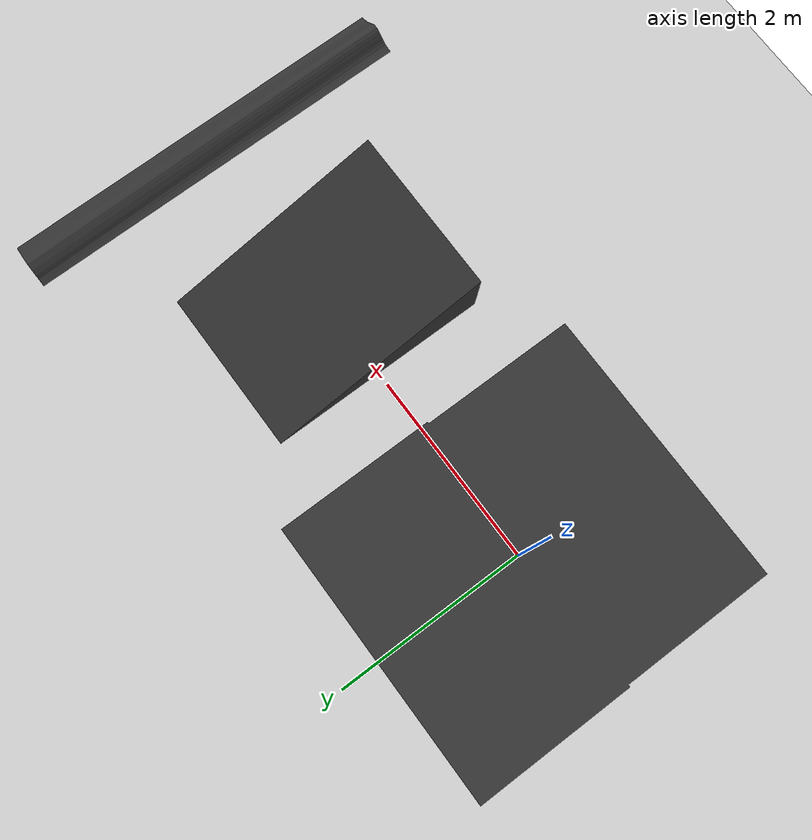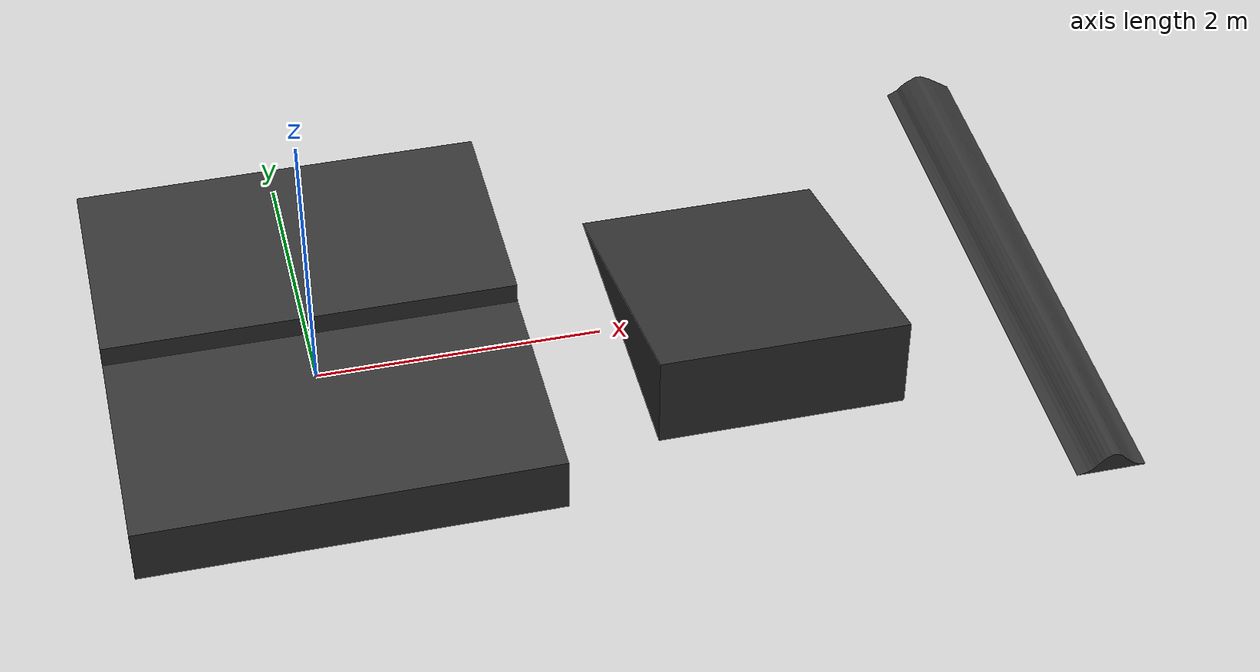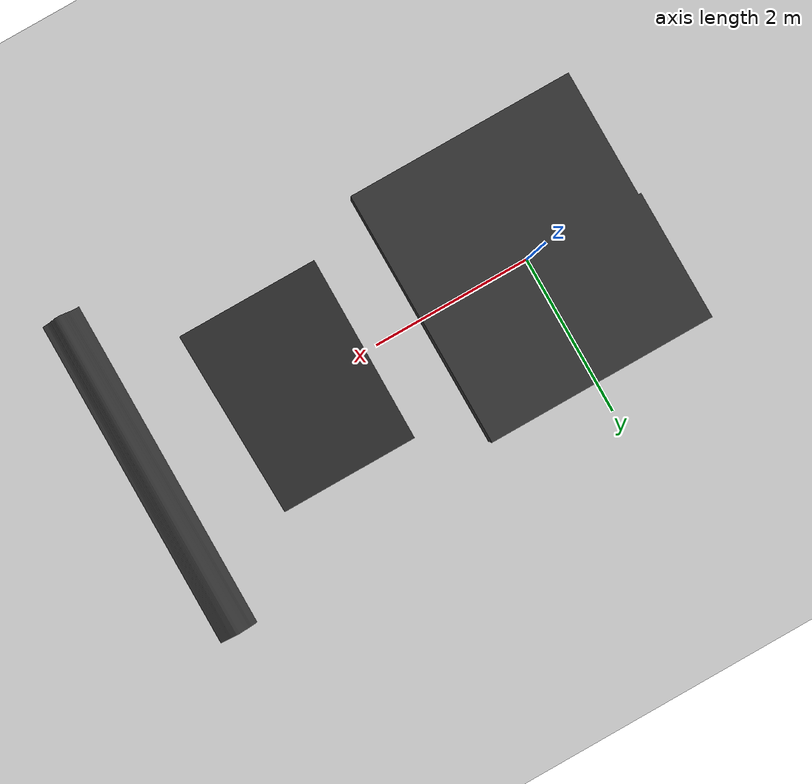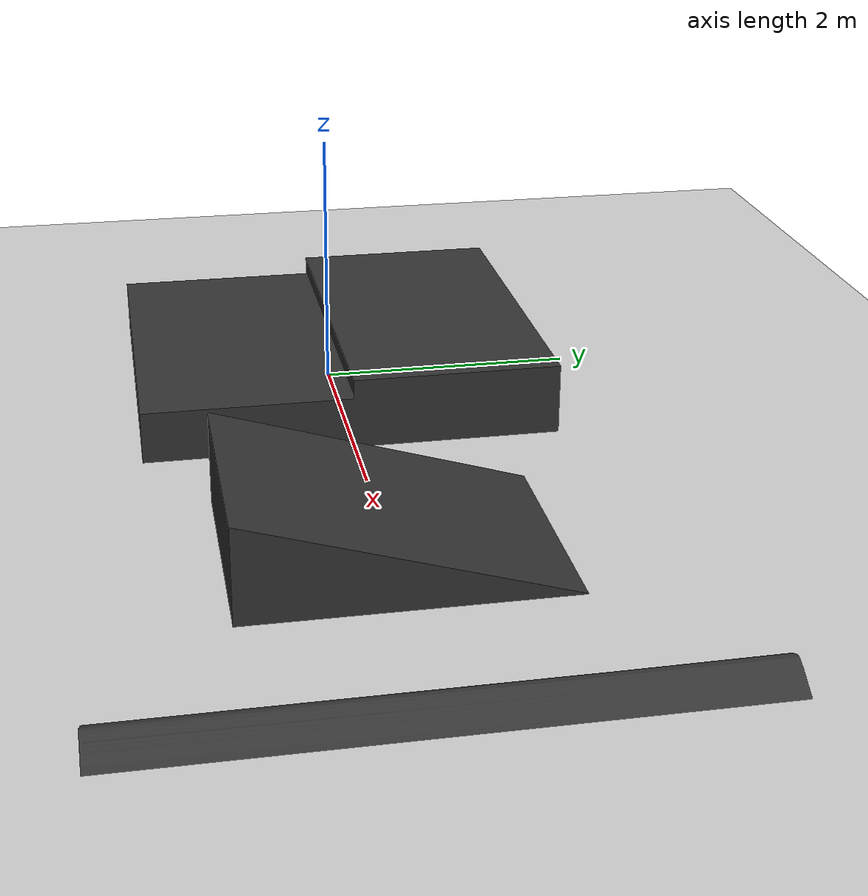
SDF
<?xml version="1.0" ?>
<sdf version="1.8">
    <world name="car_world">
        <physics name="1ms" type="dart">
            <max_step_size>0.001</max_step_size>
            <real_time_factor>1.0</real_time_factor>
        </physics>
        <plugin
            filename="libignition-gazebo-physics-system.so"
            name="ignition::gazebo::systems::Physics">
        </plugin>
        <plugin
            filename="libignition-gazebo-user-commands-system.so"
            name="ignition::gazebo::systems::UserCommands">
        </plugin>
        <plugin
            filename="libignition-gazebo-scene-broadcaster-system.so"
            name="ignition::gazebo::systems::SceneBroadcaster">
        </plugin>
        <plugin
            filename="libignition-gazebo-imu-system.so"
            name="ignition::gazebo::systems::Imu">
        </plugin>
        <plugin
            filename="libignition-gazebo-sensors-system.so"
            name="ignition::gazebo::systems::Sensors">
            <render_engine>ogre2</render_engine>
        </plugin>
        <plugin
            filename="libignition-gazebo-contact-system.so"
            name="ignition::gazebo::systems::Contact">
        </plugin>

        <light type="directional" name="sun">
            <cast_shadows>true</cast_shadows>
            <pose>0 0 10 0 0 0</pose>
            <diffuse>0.8 0.8 0.8 1</diffuse>
            <specular>0.2 0.2 0.2 1</specular>
            <attenuation>
                <range>1000</range>
                <constant>0.9</constant>
                <linear>0.01</linear>
                <quadratic>0.001</quadratic>
            </attenuation>
            <direction>-0.5 0.1 -0.9</direction>
        </light>

        <model name="ground_plane">
            <static>true</static>
            <link name="link">
                <collision name="collision">
                <geometry>
                    <plane>
                    <normal>0 0 1</normal>
                    </plane>
                </geometry>
                </collision>
                <visual name="visual">
                <geometry>
                    <plane>
                    <normal>0 0 1</normal>
                    <size>100 100</size>
                    </plane>
                </geometry>
                <material>
                    <ambient>0.8 0.8 0.8 1</ambient>
                    <diffuse>0.8 0.8 0.8 1</diffuse>
                    <specular>0.8 0.8 0.8 1</specular>
                </material>
                </visual>
            </link>
        </model>

        <model name="stair">
          <pose>0 0 0.2 0 0 0</pose> <!-- Position: X=0, Y=0, Z=0 (at the ground) -->
          <link name="stair_link">
            <collision name='stair_collision'>
              <pose>0 0 -0.01 0 0 0</pose>
              <geometry>
                <mesh>
                  <scale>1 1 1</scale>
                  <uri>model://meshes/DoubleStair.stl</uri>
                </mesh>
              </geometry>
            </collision>
            <visual name="visual">
              <geometry>
                <mesh>
                  <!-- Update the model path -->
                  <uri>model://meshes/DoubleStair.stl</uri>
                  <scale>1 1 1</scale>
                </mesh>
              </geometry>
              <material>
                <ambient>0.2 0.2 0.2 1</ambient>
                <diffuse>0.2 0.2 0.2 1</diffuse>
                <specular>0.2 0.2 0.2 1</specular>
              </material>
            </visual>
          </link>
        </model>

        <model name="fly_slope">
          <pose>3.0 0 0.35 0 0 0</pose> <!-- Position: X=0, Y=0, Z=0 (at the ground) -->
          <link name="fly_slope_link">
            <collision name='fly_slope_collision'>
              <pose>0 0 -0.01 0 0 0</pose>
              <geometry>
                <mesh>
                  <scale>1 1 1</scale>
                  <uri>model://meshes/fly_slope.stl</uri>
                </mesh>
              </geometry>
            </collision>
            <visual name="visual">
              <geometry>
                <mesh>
                  <!-- Update the model path -->
                  <uri>model://meshes/fly_slope.stl</uri>
                  <scale>1 1 1</scale>
                </mesh>
              </geometry>
              <material>
                <ambient>0.2 0.2 0.2 1</ambient>
                <diffuse>0.2 0.2 0.2 1</diffuse>
                <specular>0.2 0.2 0.2 1</specular>
              </material>
            </visual>
          </link>
        </model>

        <model name="bumps">
          <pose>5.0 0 0.07 0 0 0</pose> <!-- Position: X=0, Y=0, Z=0 (at the ground) -->
          <link name="bumps_link">
            <collision name='bumps_collision'>
              <pose>0 0 -0.01 0 0 0</pose>
              <geometry>
                <mesh>
                  <scale>1 1 1</scale>
                  <uri>model://meshes/bumps.stl</uri>
                </mesh>
              </geometry>
            </collision>
            <visual name="visual">
              <geometry>
                <mesh>
                  <!-- Update the model path -->
                  <uri>model://meshes/bumps.stl</uri>
                  <scale>1 1 1</scale>
                </mesh>
              </geometry>
              <material>
                <ambient>0.2 0.2 0.2 1</ambient>
                <diffuse>0.2 0.2 0.2 1</diffuse>
                <specular>0.2 0.2 0.2 1</specular>
              </material>
            </visual>
          </link>
        </model>

    </world>
</sdf>
